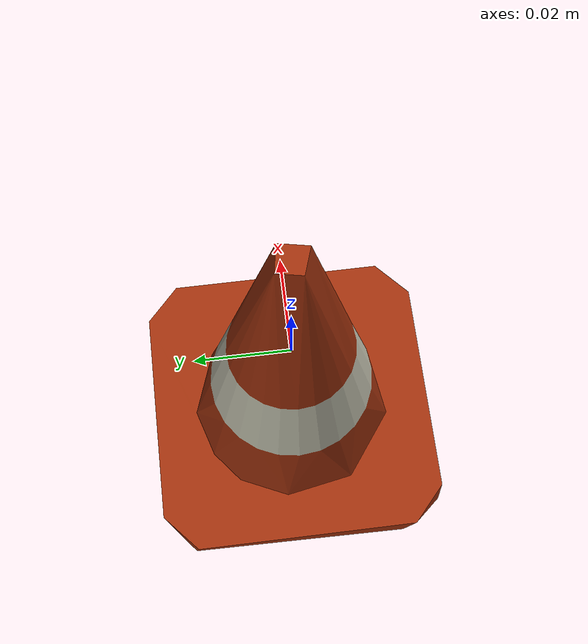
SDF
<?xml version='1.0' encoding='UTF-8'?>
<sdf version="1.4">
  <model name="cone_orange">
    <link name="link">
    <inertial>
        <mass>0.1</mass>
        <inertia>
          <ixx>1</ixx>
          <iyy>1</iyy>
        </inertia>
      </inertial>
      <collision name="collision">
        <geometry>
          <mesh>
            <uri>model://cone/cone_orange.dae</uri>
     	      <scale>0.3 0.3 0.3</scale>
          </mesh>
        </geometry>
      </collision>
      <visual name="visual">
        <geometry>
          <mesh>
            <uri>model://cone/cone_orange.dae</uri>
            <scale>0.3 0.3 0.3</scale>
          </mesh>
        </geometry>
      </visual>
    </link>
  </model>
</sdf>
